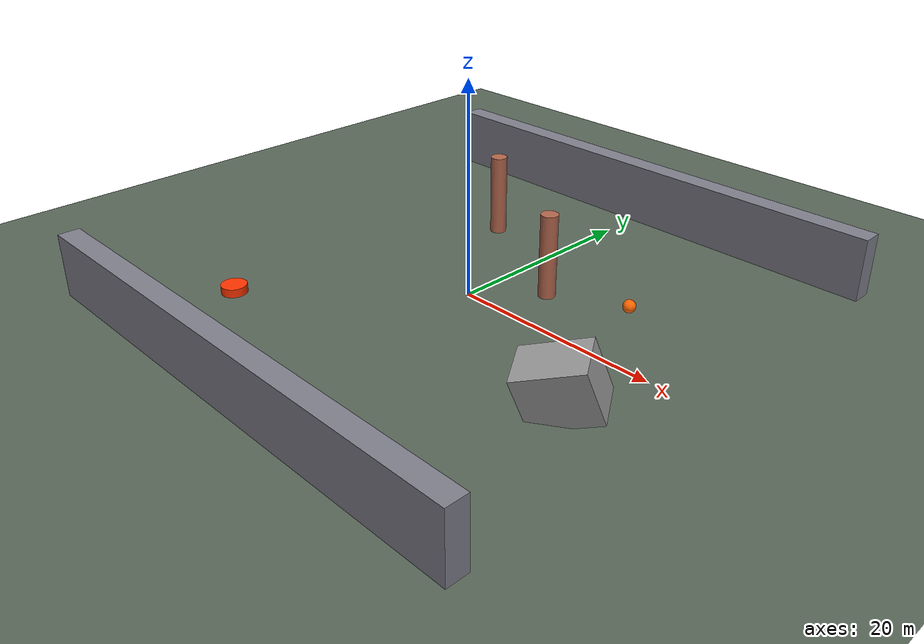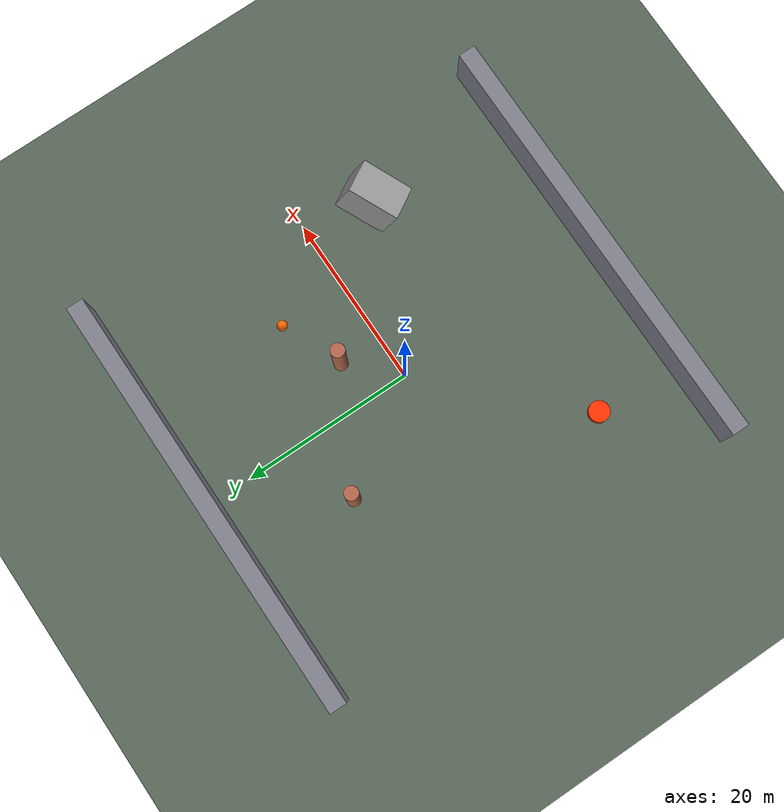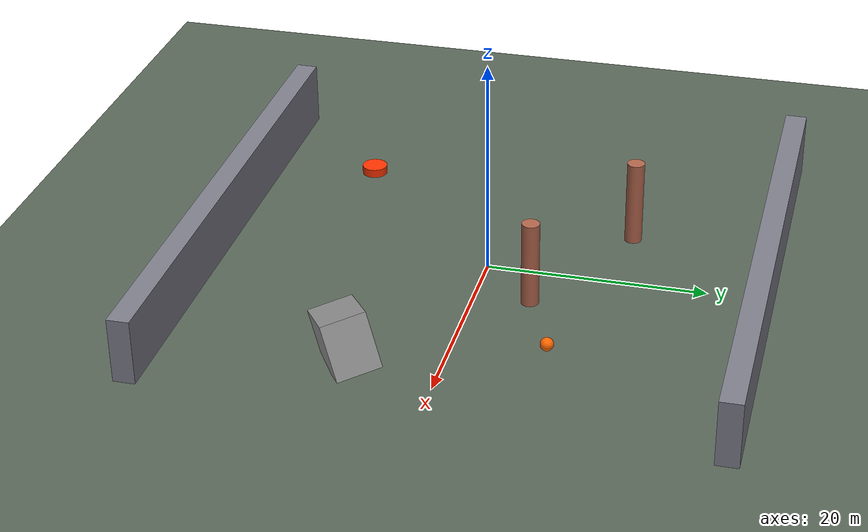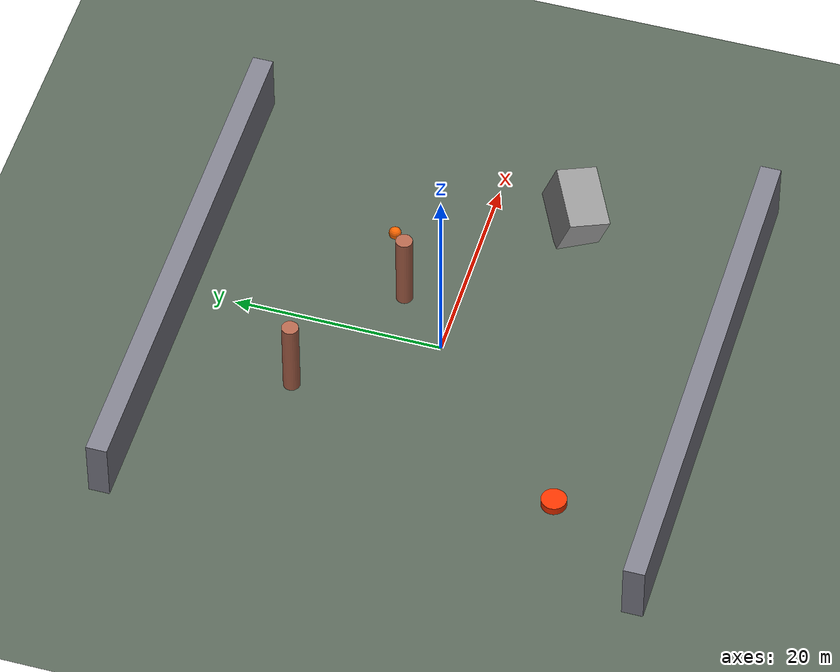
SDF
<sdf version="1.8">
 <world name="stress_coordinated_search">
  <physics name="1ms" type="ignored">
   <max_step_size>0.002</max_step_size>
   <real_time_factor>1.0</real_time_factor>
  </physics>
  <scene>
   <ambient>0.4 0.4 0.4 1.0</ambient>
   <background>0.7 0.8 1.0 1.0</background>
   <shadows>true</shadows>
   <grid>true</grid>
  </scene>
  <plugin filename="gz-sim-physics-system" name="gz::sim::systems::Physics"/>
  <plugin filename="gz-sim-scene-broadcaster-system" name="gz::sim::systems::SceneBroadcaster"/>
  <plugin filename="gz-sim-user-commands-system" name="gz::sim::systems::UserCommands"/>
  <plugin filename="gz-sim-sensors-system" name="gz::sim::systems::Sensors">
   <render_engine>ogre2</render_engine>
  </plugin>
  <plugin filename="gz-sim-imu-system" name="gz::sim::systems::Imu"/>
  <light type="directional" name="sun">
   <pose>0 0 100 0 0 0</pose>
   <diffuse>0.9 0.9 0.9 1</diffuse>
   <specular>0.3 0.3 0.3 1</specular>
   <direction>-0.5 0.1 -0.9</direction>
  </light>
  <model name="ground_plane">
   <static>true</static>
   <link name="link">
    <collision name="collision">
     <geometry><plane><normal>0 0 1</normal><size>200 200</size></plane></geometry>
    </collision>
    <visual name="visual">
     <geometry><plane><normal>0 0 1</normal><size>200 200</size></plane></geometry>
     <material><ambient>0.25 0.3 0.25 1</ambient><diffuse>0.35 0.4 0.35 1</diffuse></material>
    </visual>
   </link>
  </model>
  <model name="disaster_corridor_wall_north">
   <static>true</static>
   <pose>0.0 25.0 3.0 0 0 0</pose>
   <link name="link">
    <collision name="c"><geometry><box><size>50 2 6</size></box></geometry></collision>
    <visual name="v">
     <geometry><box><size>50 2 6</size></box></geometry>
     <material><ambient>0.4 0.4 0.45 1</ambient><diffuse>0.5 0.5 0.55 1</diffuse></material>
    </visual>
   </link>
  </model>
  <model name="disaster_corridor_wall_south">
   <static>true</static>
   <pose>0.0 -25.0 3.0 0 0 0</pose>
   <link name="link">
    <collision name="c"><geometry><box><size>50 2 6</size></box></geometry></collision>
    <visual name="v">
     <geometry><box><size>50 2 6</size></box></geometry>
     <material><ambient>0.4 0.4 0.45 1</ambient><diffuse>0.5 0.5 0.55 1</diffuse></material>
    </visual>
   </link>
  </model>
  <model name="ruin_pillar_center_1">
   <static>true</static>
   <pose>5.0 5.0 4.0 0 0 0</pose>
   <link name="link">
    <collision name="c">
     <geometry><cylinder><radius>0.8</radius><length>8.0</length></cylinder></geometry>
    </collision>
    <visual name="v">
     <geometry><cylinder><radius>0.8</radius><length>8.0</length></cylinder></geometry>
     <material><ambient>0.6 0.3 0.2 1</ambient><diffuse>0.7 0.4 0.3 1</diffuse></material>
    </visual>
   </link>
  </model>
  <model name="ruin_pillar_center_2">
   <static>true</static>
   <pose>-8.0 12.0 4.0 0 0 0</pose>
   <link name="link">
    <collision name="c">
     <geometry><cylinder><radius>0.8</radius><length>8.0</length></cylinder></geometry>
    </collision>
    <visual name="v">
     <geometry><cylinder><radius>0.8</radius><length>8.0</length></cylinder></geometry>
     <material><ambient>0.6 0.3 0.2 1</ambient><diffuse>0.7 0.4 0.3 1</diffuse></material>
    </visual>
   </link>
  </model>
  <model name="rubble_block_east">
   <static>true</static>
   <pose>18.0 -8.0 2.5 0.2 -0.3 0.5</pose>
   <link name="link">
    <collision name="c"><geometry><box><size>6 4 5</size></box></geometry></collision>
    <visual name="v">
     <geometry><box><size>6 4 5</size></box></geometry>
     <material><ambient>0.5 0.5 0.5 1</ambient><diffuse>0.6 0.6 0.6 1</diffuse></material>
    </visual>
   </link>
  </model>
  <model name="survivor_thermal_source">
   <static>true</static>
   <pose>12.0 8.0 0.5 0 0 0</pose>
   <link name="link">
    <collision name="c"><geometry><sphere><radius>0.6</radius></sphere></geometry></collision>
    <visual name="v">
     <geometry><sphere><radius>0.6</radius></sphere></geometry>
     <material>
      <ambient>1.0 0.3 0.0 1</ambient>
      <diffuse>1.0 0.4 0.0 1</diffuse>
      <emissive>1.0 0.5 0.0 1</emissive>
     </material>
    </visual>
   </link>
  </model>
  <model name="fire_debris_thermal_source">
   <static>true</static>
   <pose>-15.0 -15.0 0.5 0 0 0</pose>
   <link name="link">
    <collision name="c">
     <geometry><cylinder><radius>1.2</radius><length>0.8</length></cylinder></geometry>
    </collision>
    <visual name="v">
     <geometry><cylinder><radius>1.2</radius><length>0.8</length></cylinder></geometry>
     <material>
      <ambient>1.0 0.1 0.0 1</ambient>
      <diffuse>1.0 0.2 0.0 1</diffuse>
      <emissive>1.0 0.3 0.0 1</emissive>
     </material>
    </visual>
   </link>
  </model>
 </world>
</sdf>
